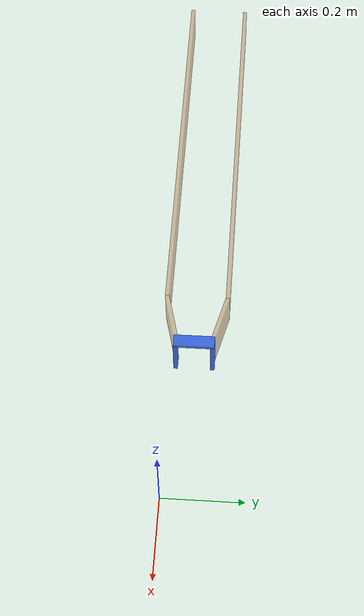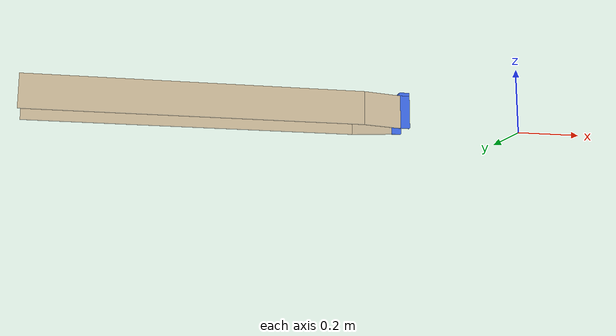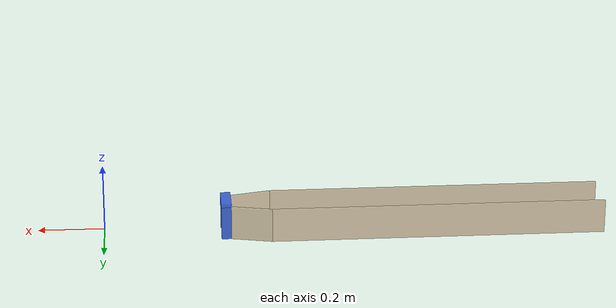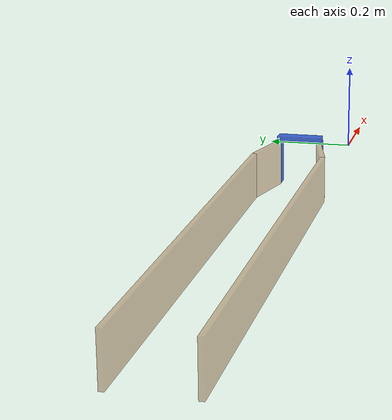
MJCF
<mujoco>
    <compiler angle="degree"/>

    <asset>
        <texture type="skybox" builtin="gradient" rgb1="1 1 1" rgb2=".6 .8 1" width="256" height="256"/>
        <texture name="texplane" type="2d" builtin="checker" rgb1=".2 .3 .4" rgb2=".1 0.15 0.2" width="512" height="512" mark="cross" markrgb=".8 .8 .8"/>

        <material name="matplane" reflectance="0" texture="texplane" texrepeat="2 2" texuniform="true"/>
        <material name="wall_mat" rgba="0.7 0.5 0.3 0.5"/>
        <material name="shadow_init" rgba="0.1 0.9 0.1 0.1"/>
        <material name="top_mat" rgba="0.7 0.5 0.3 0.5"/>
        <material name="hole_mat" rgba="0.1 0.3 0.9 0.8"/>

    </asset>

    <worldbody>

        <body name="hole" pos="0 0.05 0" euler="0 0 -90">
            <geom name="hole_top" type="box" pos="-0.00735 -0.365 0.105" size="0.0498 0.015 0.005" material="hole_mat"/>
            <geom name="hole_wall1" type="box" pos="0.0381 -0.365 0.05" size="0.005 0.015 0.05" material="hole_mat"/>
            <geom name="hole_wall2" type="box" pos="-0.0528 -0.365 0.05" size="0.005 0.015 0.05" material="hole_mat"/>

            <geom name="connection1" type="box" pos="0.0531 -0.44 0.05" euler="0 0 14.0362" size="0.005 0.06185 0.05" material="wall_mat"/>
            <geom name="connection2" type="box" pos="-0.0678 -0.44 0.05" euler="0 0 -14.0362" size="0.005 0.06185 0.05" material="wall_mat"/>

            <geom name="wall1" type="box" pos="0.0681 -1 0.05" size="0.005 0.5 0.05" material="wall_mat"/>
            <geom name="wall2" type="box" pos="-0.0828 -1 0.05" size="0.005 0.5 0.05" material="wall_mat"/>

            <site name="squeezing" pos="-0.00735 -0.4 0.06" size="0.01" rgba="1 0 0 0"/>
            <site name="hole" pos="-0.00735 -0.35 0.06" size="0.01" rgba="1 0 0 0"/>
        </body>

    </worldbody>

    <option timestep="0.002" o_solimp="0.9 0.95 0.001 0.1 2" o_solref="0.008 2" cone="elliptic"
        impratio="3.0" noslip_iterations="5" noslip_tolerance="1e-8">
        <flag override="enable"/>
    </option>

</mujoco>
